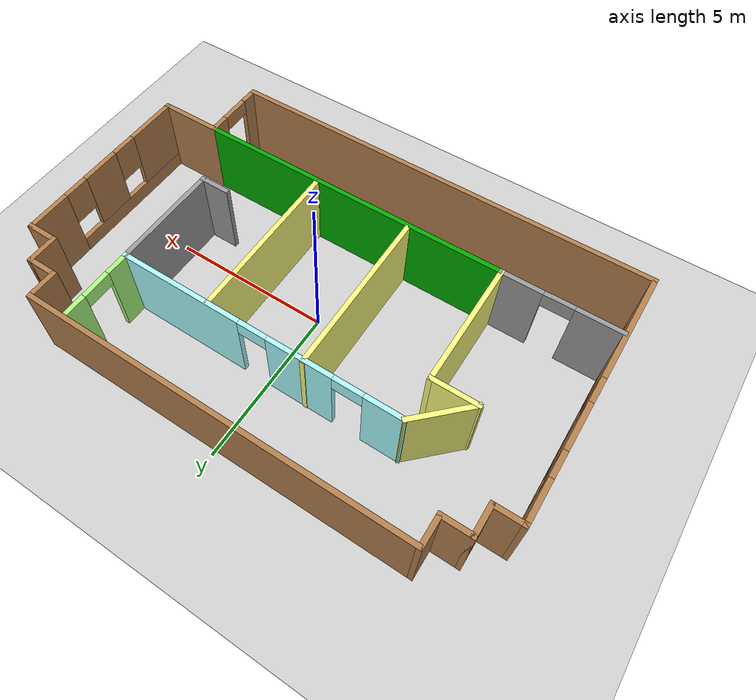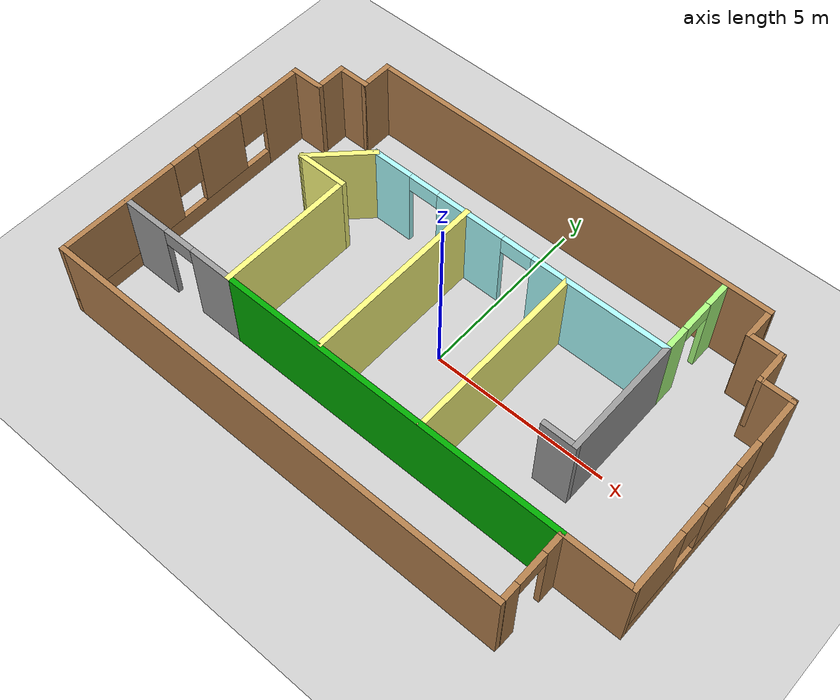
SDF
<sdf version="1.6">
 <world name="default">
  <model name="mybuilding">
   <pose>-0.05304 -0.01251 0 0 -0 0</pose>
   <link name="Wall_10">
    <collision name="Wall_10_Collision">
     <geometry><box><size>1 0.15 2.5</size></box></geometry>
     <pose>0 0 1.25 0 -0 0</pose>
    </collision>
    <visual name="Wall_10_Visual">
     <pose>0 0 1.25 0 -0 0</pose>
     <geometry><box><size>1 0.15 2.5</size></box></geometry>
     <material>
      <script><uri>file://media/materials/scripts/gazebo.material</uri><name>Gazebo/Wood</name></script>
      <ambient>1 1 1 1</ambient>
     </material>
     <meta><layer>0</layer></meta>
    </visual>
    <pose>-7.2 3.075 0 0 -0 3.14159</pose>
   </link>
   <link name="Wall_11">
    <pose>-7.625 -0.85 0 0 0 -1.5708</pose>
    <visual name="Wall_11_Visual_0">
     <pose>-3.31837 0 1.25 0 -0 0</pose>
     <geometry><box><size>1.36327 0.15 2.5</size></box></geometry>
     <material>
      <script><uri>file://media/materials/scripts/gazebo.material</uri><name>Gazebo/Wood</name></script>
      <ambient>1 1 1 1</ambient>
     </material>
     <meta><layer>0</layer></meta>
    </visual>
    <collision name="Wall_11_Collision_0">
     <geometry><box><size>1.36327 0.15 2.5</size></box></geometry>
     <pose>-3.31837 0 1.25 0 -0 0</pose>
    </collision>
    <visual name="Wall_11_Visual_1">
     <pose>0.681635 0 0.25 0 -0 0</pose>
     <geometry><box><size>6.63673 0.15 0.5</size></box></geometry>
     <material>
      <script><uri>file://media/materials/scripts/gazebo.material</uri><name>Gazebo/Wood</name></script>
      <ambient>1 1 1 1</ambient>
     </material>
     <meta><layer>0</layer></meta>
    </visual>
    <collision name="Wall_11_Collision_1">
     <geometry><box><size>6.63673 0.15 0.5</size></box></geometry>
     <pose>0.681635 0 0.25 0 -0 0</pose>
    </collision>
    <visual name="Wall_11_Visual_2">
     <pose>-1.09938 0 1.5 0 -0 0</pose>
     <geometry><box><size>1.4747 0.15 2</size></box></geometry>
     <material>
      <script><uri>file://media/materials/scripts/gazebo.material</uri><name>Gazebo/Wood</name></script>
      <ambient>1 1 1 1</ambient>
     </material>
     <meta><layer>0</layer></meta>
    </visual>
    <collision name="Wall_11_Collision_2">
     <geometry><box><size>1.4747 0.15 2</size></box></geometry>
     <pose>-1.09938 0 1.5 0 -0 0</pose>
    </collision>
    <visual name="Wall_11_Visual_3">
     <pose>2.21899 0 1.5 0 -0 0</pose>
     <geometry><box><size>3.56203 0.15 2</size></box></geometry>
     <material>
      <script><uri>file://media/materials/scripts/gazebo.material</uri><name>Gazebo/Wood</name></script>
      <ambient>1 1 1 1</ambient>
     </material>
     <meta><layer>0</layer></meta>
    </visual>
    <collision name="Wall_11_Collision_3">
     <geometry><box><size>3.56203 0.15 2</size></box></geometry>
     <pose>2.21899 0 1.5 0 -0 0</pose>
    </collision>
    <visual name="Wall_11_Visual_4">
     <pose>-2.23673 0 1.9 0 -0 0</pose>
     <geometry><box><size>0.8 0.15 1.2</size></box></geometry>
     <material>
      <script><uri>file://media/materials/scripts/gazebo.material</uri><name>Gazebo/Wood</name></script>
      <ambient>1 1 1 1</ambient>
     </material>
     <meta><layer>0</layer></meta>
    </visual>
    <collision name="Wall_11_Collision_4">
     <geometry><box><size>0.8 0.15 1.2</size></box></geometry>
     <pose>-2.23673 0 1.9 0 -0 0</pose>
    </collision>
    <visual name="Wall_11_Visual_5">
     <pose>0.037971 0 1.9 0 -0 0</pose>
     <geometry><box><size>0.8 0.15 1.2</size></box></geometry>
     <material>
      <script><uri>file://media/materials/scripts/gazebo.material</uri><name>Gazebo/Wood</name></script>
      <ambient>1 1 1 1</ambient>
     </material>
     <meta><layer>0</layer></meta>
    </visual>
    <collision name="Wall_11_Collision_5">
     <geometry><box><size>0.8 0.15 1.2</size></box></geometry>
     <pose>0.037971 0 1.9 0 -0 0</pose>
    </collision>
   </link>
   <link name="Wall_12">
    <collision name="Wall_12_Collision">
     <geometry><box><size>13.54 0.15 2.5</size></box></geometry>
     <pose>0 0 1.25 0 -0 0</pose>
    </collision>
    <visual name="Wall_12_Visual">
     <pose>0 0 1.25 0 -0 0</pose>
     <geometry><box><size>13.54 0.15 2.5</size></box></geometry>
     <material>
      <script><uri>file://media/materials/scripts/gazebo.material</uri><name>Gazebo/Wood</name></script>
      <ambient>1 1 1 1</ambient>
     </material>
     <meta><layer>0</layer></meta>
    </visual>
    <pose>-0.93 -4.775 0 0 -0 0</pose>
   </link>
   <link name="Wall_27">
    <collision name="Wall_27_Collision">
     <geometry><box><size>1 0.15 2.5</size></box></geometry>
     <pose>0 0 1.25 0 -0 0</pose>
    </collision>
    <visual name="Wall_27_Visual">
     <pose>0 0 1.25 0 -0 0</pose>
     <geometry><box><size>1 0.15 2.5</size></box></geometry>
     <material>
      <script><uri>file://media/materials/scripts/gazebo.material</uri><name>Gazebo/Wood</name></script>
      <ambient>1 1 1 1</ambient>
     </material>
     <meta><layer>0</layer></meta>
    </visual>
    <pose>-6.35 3.925 0 0 -0 0</pose>
   </link>
   <link name="Wall_28">
    <collision name="Wall_28_Collision">
     <geometry><box><size>1 0.15 2.5</size></box></geometry>
     <pose>0 0 1.25 0 -0 0</pose>
    </collision>
    <visual name="Wall_28_Visual">
     <pose>0 0 1.25 0 -0 0</pose>
     <geometry><box><size>1 0.15 2.5</size></box></geometry>
     <material>
      <script><uri>file://media/materials/scripts/gazebo.material</uri><name>Gazebo/Wood</name></script>
      <ambient>1 1 1 1</ambient>
     </material>
     <meta><layer>0</layer></meta>
    </visual>
    <pose>-5.925 4.35 0 0 -0 1.5708</pose>
   </link>
   <link name="Wall_29">
    <collision name="Wall_29_Collision">
     <geometry><box><size>12 0.15 2.5</size></box></geometry>
     <pose>0 0 1.25 0 -0 0</pose>
    </collision>
    <visual name="Wall_29_Visual">
     <pose>0 0 1.25 0 -0 0</pose>
     <geometry><box><size>12 0.15 2.5</size></box></geometry>
     <material>
      <script><uri>file://media/materials/scripts/gazebo.material</uri><name>Gazebo/Wood</name></script>
      <ambient>1 1 1 1</ambient>
     </material>
     <meta><layer>0</layer></meta>
    </visual>
    <pose>0 4.775 0 0 -0 0</pose>
   </link>
   <link name="Wall_3">
    <collision name="Wall_3_Collision">
     <geometry><box><size>1 0.15 2.5</size></box></geometry>
     <pose>0 0 1.25 0 -0 0</pose>
    </collision>
    <visual name="Wall_3_Visual">
     <pose>0 0 1.25 0 -0 0</pose>
     <geometry><box><size>1 0.15 2.5</size></box></geometry>
     <material>
      <script><uri>file://media/materials/scripts/gazebo.material</uri><name>Gazebo/Wood</name></script>
      <ambient>1 1 1 1</ambient>
     </material>
     <meta><layer>0</layer></meta>
    </visual>
    <pose>6.775 3.5 0 0 0 -1.5708</pose>
   </link>
   <link name="Wall_30">
    <collision name="Wall_30_Collision">
     <geometry><box><size>1 0.15 2.5</size></box></geometry>
     <pose>0 0 1.25 0 -0 0</pose>
    </collision>
    <visual name="Wall_30_Visual">
     <pose>0 0 1.25 0 -0 0</pose>
     <geometry><box><size>1 0.15 2.5</size></box></geometry>
     <material>
      <script><uri>file://media/materials/scripts/gazebo.material</uri><name>Gazebo/Wood</name></script>
      <ambient>1 1 1 1</ambient>
     </material>
     <meta><layer>0</layer></meta>
    </visual>
    <pose>5.925 4.35 0 0 0 -1.5708</pose>
   </link>
   <link name="Wall_31">
    <collision name="Wall_31_Collision">
     <geometry><box><size>1 0.15 2.5</size></box></geometry>
     <pose>0 0 1.25 0 -0 0</pose>
    </collision>
    <visual name="Wall_31_Visual">
     <pose>0 0 1.25 0 -0 0</pose>
     <geometry><box><size>1 0.15 2.5</size></box></geometry>
     <material>
      <script><uri>file://media/materials/scripts/gazebo.material</uri><name>Gazebo/Wood</name></script>
      <ambient>1 1 1 1</ambient>
     </material>
     <meta><layer>0</layer></meta>
    </visual>
    <pose>6.35 3.925 0 0 -0 0</pose>
   </link>
   <link name="Wall_33">
    <collision name="Wall_33_Collision">
     <geometry><box><size>2 0.15 2.5</size></box></geometry>
     <pose>0 0 1.25 0 -0 0</pose>
    </collision>
    <visual name="Wall_33_Visual">
     <pose>0 0 1.25 0 -0 0</pose>
     <geometry><box><size>2 0.15 2.5</size></box></geometry>
     <material>
      <script><uri>file://media/materials/scripts/gazebo.material</uri><name>Gazebo/Wood</name></script>
      <ambient>1 1 1 1</ambient>
     </material>
     <meta><layer>0</layer></meta>
    </visual>
    <pose>6.7 -2.775 0 0 -0 3.14159</pose>
   </link>
   <link name="Wall_34">
    <pose>5.775 -3.7 0 0 0 -1.5708</pose>
    <visual name="Wall_34_Visual_0">
     <pose>-0.676265 0 1.25 0 -0 0</pose>
     <geometry><box><size>0.64747 0.15 2.5</size></box></geometry>
     <material>
      <script><uri>file://media/materials/scripts/gazebo.material</uri><name>Gazebo/Wood</name></script>
      <ambient>1 1 1 1</ambient>
     </material>
     <meta><layer>0</layer></meta>
    </visual>
    <collision name="Wall_34_Collision_0">
     <geometry><box><size>0.64747 0.15 2.5</size></box></geometry>
     <pose>-0.676265 0 1.25 0 -0 0</pose>
    </collision>
    <visual name="Wall_34_Visual_1">
     <pose>0.773735 0 1.25 0 -0 0</pose>
     <geometry><box><size>0.45253 0.15 2.5</size></box></geometry>
     <material>
      <script><uri>file://media/materials/scripts/gazebo.material</uri><name>Gazebo/Wood</name></script>
      <ambient>1 1 1 1</ambient>
     </material>
     <meta><layer>0</layer></meta>
    </visual>
    <collision name="Wall_34_Collision_1">
     <geometry><box><size>0.45253 0.15 2.5</size></box></geometry>
     <pose>0.773735 0 1.25 0 -0 0</pose>
    </collision>
    <visual name="Wall_34_Visual_2">
     <pose>0.09747 0 2.25 0 -0 0</pose>
     <geometry><box><size>0.9 0.15 0.5</size></box></geometry>
     <material>
      <script><uri>file://media/materials/scripts/gazebo.material</uri><name>Gazebo/Wood</name></script>
      <ambient>1 1 1 1</ambient>
     </material>
     <meta><layer>0</layer></meta>
    </visual>
    <collision name="Wall_34_Collision_2">
     <geometry><box><size>0.9 0.15 0.5</size></box></geometry>
     <pose>0.09747 0 2.25 0 -0 0</pose>
    </collision>
   </link>
   <link name="Wall_36">
    <collision name="Wall_36_Collision">
     <geometry><box><size>10 0.15 2.5</size></box></geometry>
     <pose>0 0 1.25 0 -0 0</pose>
    </collision>
    <visual name="Wall_36_Visual">
     <pose>0 0 1.25 0 -0 0</pose>
     <geometry><box><size>10 0.15 2.5</size></box></geometry>
     <material>
      <script><uri>file://media/materials/scripts/gazebo.material</uri><name>Gazebo/Grey</name></script>
      <ambient>0 0.666667 0 1</ambient>
     </material>
     <meta><layer>0</layer></meta>
    </visual>
    <pose>0.85 -2.775 0 0 -0 3.14159</pose>
   </link>
   <link name="Wall_37">
    <collision name="Wall_37_Collision">
     <geometry><box><size>4 0.15 2.5</size></box></geometry>
     <pose>0 0 1.25 0 -0 0</pose>
    </collision>
    <visual name="Wall_37_Visual">
     <pose>0 0 1.25 0 -0 0</pose>
     <geometry><box><size>4 0.15 2.5</size></box></geometry>
     <material>
      <script><uri>file://media/materials/scripts/gazebo.material</uri><name>Gazebo/Grey</name></script>
      <ambient>1 1 0.498039 1</ambient>
     </material>
     <meta><layer>0</layer></meta>
    </visual>
    <pose>-4.075 -0.85 0 0 -0 1.5708</pose>
   </link>
   <link name="Wall_39">
    <pose>-5.82 -2.775 0 0 -0 3.14159</pose>
    <visual name="Wall_39_Visual_0">
     <pose>-1.16071 0 1.25 0 -0 0</pose>
     <geometry><box><size>1.31859 0.15 2.5</size></box></geometry>
     <material>
      <script><uri>file://media/materials/scripts/gazebo.material</uri><name>Gazebo/Grey</name></script>
      <ambient>1 1 1 1</ambient>
     </material>
     <meta><layer>0</layer></meta>
    </visual>
    <collision name="Wall_39_Collision_0">
     <geometry><box><size>1.31859 0.15 2.5</size></box></geometry>
     <pose>-1.16071 0 1.25 0 -0 0</pose>
    </collision>
    <visual name="Wall_39_Visual_1">
     <pose>1.10929 0 1.25 0 -0 0</pose>
     <geometry><box><size>1.42141 0.15 2.5</size></box></geometry>
     <material>
      <script><uri>file://media/materials/scripts/gazebo.material</uri><name>Gazebo/Grey</name></script>
      <ambient>1 1 1 1</ambient>
     </material>
     <meta><layer>0</layer></meta>
    </visual>
    <collision name="Wall_39_Collision_1">
     <geometry><box><size>1.42141 0.15 2.5</size></box></geometry>
     <pose>1.10929 0 1.25 0 -0 0</pose>
    </collision>
    <visual name="Wall_39_Visual_2">
     <pose>-0.051413 0 2.25 0 -0 0</pose>
     <geometry><box><size>0.9 0.15 0.5</size></box></geometry>
     <material>
      <script><uri>file://media/materials/scripts/gazebo.material</uri><name>Gazebo/Grey</name></script>
      <ambient>1 1 1 1</ambient>
     </material>
     <meta><layer>0</layer></meta>
    </visual>
    <collision name="Wall_39_Collision_2">
     <geometry><box><size>0.9 0.15 0.5</size></box></geometry>
     <pose>-0.051413 0 2.25 0 -0 0</pose>
    </collision>
   </link>
   <link name="Wall_4">
    <collision name="Wall_4_Collision">
     <geometry><box><size>1 0.15 2.5</size></box></geometry>
     <pose>0 0 1.25 0 -0 0</pose>
    </collision>
    <visual name="Wall_4_Visual">
     <pose>0 0 1.25 0 -0 0</pose>
     <geometry><box><size>1 0.15 2.5</size></box></geometry>
     <material>
      <script><uri>file://media/materials/scripts/gazebo.material</uri><name>Gazebo/Wood</name></script>
      <ambient>1 1 1 1</ambient>
     </material>
     <meta><layer>0</layer></meta>
    </visual>
    <pose>7.2 3.075 0 0 -0 0</pose>
   </link>
   <link name="Wall_41">
    <collision name="Wall_41_Collision">
     <geometry><box><size>1.5 0.15 2.5</size></box></geometry>
     <pose>0 0 1.25 0 -0 0</pose>
    </collision>
    <visual name="Wall_41_Visual">
     <pose>0 0 1.25 0 -0 0</pose>
     <geometry><box><size>1.5 0.15 2.5</size></box></geometry>
     <material>
      <script><uri>file://media/materials/scripts/gazebo.material</uri><name>Gazebo/Grey</name></script>
      <ambient>1 1 0.498039 1</ambient>
     </material>
     <meta><layer>0</layer></meta>
    </visual>
    <pose>-4.75 1.075 0 0 -0 3.14159</pose>
   </link>
   <link name="Wall_42">
    <collision name="Wall_42_Collision">
     <geometry><box><size>2 0.15 2.5</size></box></geometry>
     <pose>0 0 1.25 0 -0 0</pose>
    </collision>
    <visual name="Wall_42_Visual">
     <pose>0 0 1.25 0 -0 0</pose>
     <geometry><box><size>2 0.15 2.5</size></box></geometry>
     <material>
      <script><uri>file://media/materials/scripts/gazebo.material</uri><name>Gazebo/Grey</name></script>
      <ambient>1 1 0.498039 1</ambient>
     </material>
     <meta><layer>0</layer></meta>
    </visual>
    <pose>-4.77093 1.72907 0 0 -0 0.785398</pose>
   </link>
   <link name="Wall_43">
    <pose>0.308147 2.38315 0 0 -0 0</pose>
    <visual name="Wall_43_Visual_0">
     <pose>-3.88669 0 1.25 0 -0 0</pose>
     <geometry><box><size>1.22662 0.15 2.5</size></box></geometry>
     <material>
      <script><uri>file://media/materials/scripts/gazebo.material</uri><name>Gazebo/Grey</name></script>
      <ambient>0.666667 1 1 1</ambient>
     </material>
     <meta><layer>0</layer></meta>
    </visual>
    <collision name="Wall_43_Collision_0">
     <geometry><box><size>1.22662 0.15 2.5</size></box></geometry>
     <pose>-3.88669 0 1.25 0 -0 0</pose>
    </collision>
    <visual name="Wall_43_Visual_1">
     <pose>-1.35541 0 1.25 0 -0 0</pose>
     <geometry><box><size>2.03595 0.15 2.5</size></box></geometry>
     <material>
      <script><uri>file://media/materials/scripts/gazebo.material</uri><name>Gazebo/Grey</name></script>
      <ambient>0.666667 1 1 1</ambient>
     </material>
     <meta><layer>0</layer></meta>
    </visual>
    <collision name="Wall_43_Collision_1">
     <geometry><box><size>2.03595 0.15 2.5</size></box></geometry>
     <pose>-1.35541 0 1.25 0 -0 0</pose>
    </collision>
    <visual name="Wall_43_Visual_2">
     <pose>2.53128 0 1.25 0 -0 0</pose>
     <geometry><box><size>3.93743 0.15 2.5</size></box></geometry>
     <material>
      <script><uri>file://media/materials/scripts/gazebo.material</uri><name>Gazebo/Grey</name></script>
      <ambient>0.666667 1 1 1</ambient>
     </material>
     <meta><layer>0</layer></meta>
    </visual>
    <collision name="Wall_43_Collision_2">
     <geometry><box><size>3.93743 0.15 2.5</size></box></geometry>
     <pose>2.53128 0 1.25 0 -0 0</pose>
    </collision>
    <visual name="Wall_43_Visual_3">
     <pose>-2.82338 0 2.25 0 -0 0</pose>
     <geometry><box><size>0.9 0.15 0.5</size></box></geometry>
     <material>
      <script><uri>file://media/materials/scripts/gazebo.material</uri><name>Gazebo/Grey</name></script>
      <ambient>0.666667 1 1 1</ambient>
     </material>
     <meta><layer>0</layer></meta>
    </visual>
    <collision name="Wall_43_Collision_3">
     <geometry><box><size>0.9 0.15 0.5</size></box></geometry>
     <pose>-2.82338 0 2.25 0 -0 0</pose>
    </collision>
    <visual name="Wall_43_Visual_4">
     <pose>0.112566 0 2.25 0 -0 0</pose>
     <geometry><box><size>0.9 0.15 0.5</size></box></geometry>
     <material>
      <script><uri>file://media/materials/scripts/gazebo.material</uri><name>Gazebo/Grey</name></script>
      <ambient>0.666667 1 1 1</ambient>
     </material>
     <meta><layer>0</layer></meta>
    </visual>
    <collision name="Wall_43_Collision_4">
     <geometry><box><size>0.9 0.15 0.5</size></box></geometry>
     <pose>0.112566 0 2.25 0 -0 0</pose>
    </collision>
   </link>
   <link name="Wall_44">
    <pose>4.73315 3.55815 0 0 -0 1.5708</pose>
    <visual name="Wall_44_Visual_0">
     <pose>-0.851259 0 1.25 0 -0 0</pose>
     <geometry><box><size>0.797482 0.15 2.5</size></box></geometry>
     <material>
      <script><uri>file://media/materials/scripts/gazebo.material</uri><name>Gazebo/Grey</name></script>
      <ambient>0.666667 1 0.498039 1</ambient>
     </material>
     <meta><layer>0</layer></meta>
    </visual>
    <collision name="Wall_44_Collision_0">
     <geometry><box><size>0.797482 0.15 2.5</size></box></geometry>
     <pose>-0.851259 0 1.25 0 -0 0</pose>
    </collision>
    <visual name="Wall_44_Visual_1">
     <pose>0.848741 0 1.25 0 -0 0</pose>
     <geometry><box><size>0.802518 0.15 2.5</size></box></geometry>
     <material>
      <script><uri>file://media/materials/scripts/gazebo.material</uri><name>Gazebo/Grey</name></script>
      <ambient>0.666667 1 0.498039 1</ambient>
     </material>
     <meta><layer>0</layer></meta>
    </visual>
    <collision name="Wall_44_Collision_1">
     <geometry><box><size>0.802518 0.15 2.5</size></box></geometry>
     <pose>0.848741 0 1.25 0 -0 0</pose>
    </collision>
    <visual name="Wall_44_Visual_2">
     <pose>-0.002518 0 2.25 0 -0 0</pose>
     <geometry><box><size>0.9 0.15 0.5</size></box></geometry>
     <material>
      <script><uri>file://media/materials/scripts/gazebo.material</uri><name>Gazebo/Grey</name></script>
      <ambient>0.666667 1 0.498039 1</ambient>
     </material>
     <meta><layer>0</layer></meta>
    </visual>
    <collision name="Wall_44_Collision_2">
     <geometry><box><size>0.9 0.15 0.5</size></box></geometry>
     <pose>-0.002518 0 2.25 0 -0 0</pose>
    </collision>
   </link>
   <link name="Wall_46">
    <collision name="Wall_46_Collision">
     <geometry><box><size>5.25 0.15 2.5</size></box></geometry>
     <pose>0 0 1.25 0 -0 0</pose>
    </collision>
    <visual name="Wall_46_Visual">
     <pose>0 0 1.25 0 -0 0</pose>
     <geometry><box><size>5.25 0.15 2.5</size></box></geometry>
     <material>
      <script><uri>file://media/materials/scripts/gazebo.material</uri><name>Gazebo/Grey</name></script>
      <ambient>1 1 0.498039 1</ambient>
     </material>
     <meta><layer>0</layer></meta>
    </visual>
    <pose>-1.18669 -0.145072 0 0 0 -1.5708</pose>
   </link>
   <link name="Wall_48">
    <collision name="Wall_48_Collision">
     <geometry><box><size>5.25 0.15 2.5</size></box></geometry>
     <pose>0 0 1.25 0 -0 0</pose>
    </collision>
    <visual name="Wall_48_Visual">
     <pose>0 0 1.25 0 -0 0</pose>
     <geometry><box><size>5.25 0.15 2.5</size></box></geometry>
     <material>
      <script><uri>file://media/materials/scripts/gazebo.material</uri><name>Gazebo/Grey</name></script>
      <ambient>1 1 0.498039 1</ambient>
     </material>
     <meta><layer>0</layer></meta>
    </visual>
    <pose>1.89331 -0.205072 0 0 0 -1.5708</pose>
   </link>
   <link name="Wall_5">
    <pose>7.625 0.15 0 0 0 -1.5708</pose>
    <visual name="Wall_5_Visual_0">
     <pose>-2.29191 0 1.25 0 -0 0</pose>
     <geometry><box><size>1.41617 0.15 2.5</size></box></geometry>
     <material>
      <script><uri>file://media/materials/scripts/gazebo.material</uri><name>Gazebo/Wood</name></script>
      <ambient>1 1 1 1</ambient>
     </material>
     <meta><layer>0</layer></meta>
    </visual>
    <collision name="Wall_5_Collision_0">
     <geometry><box><size>1.41617 0.15 2.5</size></box></geometry>
     <pose>-2.29191 0 1.25 0 -0 0</pose>
    </collision>
    <visual name="Wall_5_Visual_1">
     <pose>0.708086 0 0.25 0 -0 0</pose>
     <geometry><box><size>4.58383 0.15 0.5</size></box></geometry>
     <material>
      <script><uri>file://media/materials/scripts/gazebo.material</uri><name>Gazebo/Wood</name></script>
      <ambient>1 1 1 1</ambient>
     </material>
     <meta><layer>0</layer></meta>
    </visual>
    <collision name="Wall_5_Collision_1">
     <geometry><box><size>4.58383 0.15 0.5</size></box></geometry>
     <pose>0.708086 0 0.25 0 -0 0</pose>
    </collision>
    <visual name="Wall_5_Visual_2">
     <pose>-0.165504 0 1.5 0 -0 0</pose>
     <geometry><box><size>1.23665 0.15 2</size></box></geometry>
     <material>
      <script><uri>file://media/materials/scripts/gazebo.material</uri><name>Gazebo/Wood</name></script>
      <ambient>1 1 1 1</ambient>
     </material>
     <meta><layer>0</layer></meta>
    </visual>
    <collision name="Wall_5_Collision_2">
     <geometry><box><size>1.23665 0.15 2</size></box></geometry>
     <pose>-0.165504 0 1.5 0 -0 0</pose>
    </collision>
    <visual name="Wall_5_Visual_3">
     <pose>2.12641 0 1.5 0 -0 0</pose>
     <geometry><box><size>1.74718 0.15 2</size></box></geometry>
     <material>
      <script><uri>file://media/materials/scripts/gazebo.material</uri><name>Gazebo/Wood</name></script>
      <ambient>1 1 1 1</ambient>
     </material>
     <meta><layer>0</layer></meta>
    </visual>
    <collision name="Wall_5_Collision_3">
     <geometry><box><size>1.74718 0.15 2</size></box></geometry>
     <pose>2.12641 0 1.5 0 -0 0</pose>
    </collision>
    <visual name="Wall_5_Visual_4">
     <pose>-1.18383 0 1.9 0 -0 0</pose>
     <geometry><box><size>0.8 0.15 1.2</size></box></geometry>
     <material>
      <script><uri>file://media/materials/scripts/gazebo.material</uri><name>Gazebo/Wood</name></script>
      <ambient>1 1 1 1</ambient>
     </material>
     <meta><layer>0</layer></meta>
    </visual>
    <collision name="Wall_5_Collision_4">
     <geometry><box><size>0.8 0.15 1.2</size></box></geometry>
     <pose>-1.18383 0 1.9 0 -0 0</pose>
    </collision>
    <visual name="Wall_5_Visual_5">
     <pose>0.852821 0 1.9 0 -0 0</pose>
     <geometry><box><size>0.8 0.15 1.2</size></box></geometry>
     <material>
      <script><uri>file://media/materials/scripts/gazebo.material</uri><name>Gazebo/Wood</name></script>
      <ambient>1 1 1 1</ambient>
     </material>
     <meta><layer>0</layer></meta>
    </visual>
    <collision name="Wall_5_Collision_5">
     <geometry><box><size>0.8 0.15 1.2</size></box></geometry>
     <pose>0.852821 0 1.9 0 -0 0</pose>
    </collision>
   </link>
   <link name="Wall_50">
    <collision name="Wall_50_Collision">
     <geometry><box><size>3.5 0.15 2.5</size></box></geometry>
     <pose>0 0 1.25 0 -0 0</pose>
    </collision>
    <visual name="Wall_50_Visual">
     <pose>0 0 1.25 0 -0 0</pose>
     <geometry><box><size>3.5 0.15 2.5</size></box></geometry>
     <material>
      <script><uri>file://media/materials/scripts/gazebo.material</uri><name>Gazebo/Grey</name></script>
      <ambient>0 0 0 1</ambient>
     </material>
     <meta><layer>0</layer></meta>
    </visual>
    <pose>4.73315 0.708147 0 0 0 -1.5708</pose>
   </link>
   <link name="Wall_51">
    <collision name="Wall_51_Collision">
     <geometry><box><size>1 0.15 2.5</size></box></geometry>
     <pose>0 0 1.25 0 -0 0</pose>
    </collision>
    <visual name="Wall_51_Visual">
     <pose>0 0 1.25 0 -0 0</pose>
     <geometry><box><size>1 0.15 2.5</size></box></geometry>
     <material>
      <script><uri>file://media/materials/scripts/gazebo.material</uri><name>Gazebo/Grey</name></script>
      <ambient>0 0 0 1</ambient>
     </material>
     <meta><layer>0</layer></meta>
    </visual>
    <pose>4.30815 -0.966853 0 0 -0 3.14159</pose>
   </link>
   <link name="Wall_9">
    <collision name="Wall_9_Collision">
     <geometry><box><size>1 0.15 2.5</size></box></geometry>
     <pose>0 0 1.25 0 -0 0</pose>
    </collision>
    <visual name="Wall_9_Visual">
     <pose>0 0 1.25 0 -0 0</pose>
     <geometry><box><size>1 0.15 2.5</size></box></geometry>
     <material>
      <script><uri>file://media/materials/scripts/gazebo.material</uri><name>Gazebo/Wood</name></script>
      <ambient>1 1 1 1</ambient>
     </material>
     <meta><layer>0</layer></meta>
    </visual>
    <pose>-6.775 3.5 0 0 0 -1.5708</pose>
   </link>
   <static>1</static>
  </model>
  <model name="ground_plane">
   <static>1</static>
   <link name="link">
    <collision name="collision">
     <geometry><plane><normal>0 0 1</normal><size>100 100</size></plane></geometry>
     <surface><friction><ode><mu>100</mu><mu2>50</mu2></ode></friction></surface>
    </collision>
    <visual name="visual">
     <cast_shadows>0</cast_shadows>
     <geometry><plane><normal>0 0 1</normal><size>100 100</size></plane></geometry>
     <material>
      <script><uri>file://media/materials/scripts/gazebo.material</uri><name>Gazebo/Grey</name></script>
     </material>
    </visual>
   </link>
   <pose>0.532302 5.79996 0 0 -0 0</pose>
  </model>
 </world>
</sdf>
